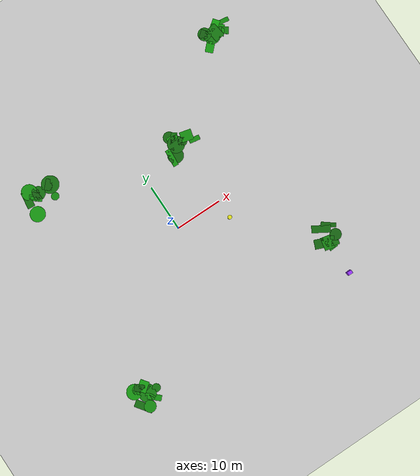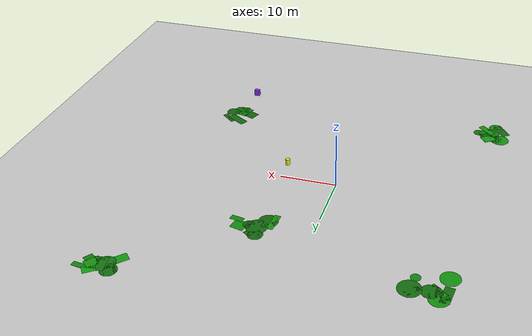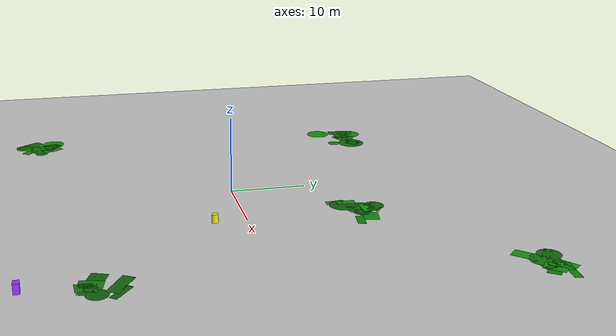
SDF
<sdf version="1.8">
 <world name="semantic_segmentation_world">
  <model name="ground_plane">
   <static>true</static>
   <link name="link">
    <collision name="collision">
     <geometry><plane><normal>0 0 1</normal><size>120 120</size></plane></geometry>
     <surface><friction><ode><mu>100</mu><mu2>50</mu2></ode></friction></surface>
    </collision>
    <visual name="visual">
     <geometry><plane><normal>0 0 1</normal><size>100 100</size></plane></geometry>
     <material>
      <ambient>0.8 0.8 0.8 1</ambient>
      <diffuse>0.8 0.8 0.8 1</diffuse>
      <specular>0.8 0.8 0.8 1</specular>
     </material>
    </visual>
   </link>
  </model>
  <model name="dynamic_obstacle_3">
   <static>true</static>
   <pose>24 -27 0.6 0 0 0</pose>
   <link name="body">
    <inertial><mass>1</mass><inertia><ixx>0.12</ixx><iyy>0.12</iyy><izz>0.12</izz></inertia></inertial>
    <velocity_decay><linear>0.4</linear><angular>0.8</angular></velocity_decay>
    <collision name="collision">
     <geometry><box><size>1.0 0.7 1.2</size></box></geometry>
     <surface><friction><ode><mu>0.2</mu><mu2>0.2</mu2></ode></friction></surface>
    </collision>
    <visual name="visual">
     <geometry><box><size>1.0 0.7 1.2</size></box></geometry>
     <material><ambient>0.6 0.2 1 1</ambient><diffuse>0.6 0.2 1 1</diffuse></material>
    </visual>
   </link>
   <plugin filename="ignition-gazebo-label-system" name="ignition::gazebo::systems::Label">
    <label>6</label>
   </plugin>
   <plugin filename="libssmi_periodic_motion_system.so" name="semantic_segmentation_husky::PeriodicMotionSystem">
    <offset>10 10 0</offset>
    <period>45</period>
    <phase>11.25</phase>
   </plugin>
  </model>
  <model name="dynamic_obstacle_8">
   <static>true</static>
   <pose>10 -4 0.55 0 0 -1.5708</pose>
   <link name="body">
    <inertial><mass>1</mass><inertia><ixx>0.1</ixx><iyy>0.1</iyy><izz>0.1</izz></inertia></inertial>
    <velocity_decay><linear>0.4</linear><angular>0.8</angular></velocity_decay>
    <collision name="collision">
     <geometry><cylinder><radius>0.42</radius><length>1.1</length></cylinder></geometry>
     <surface><friction><ode><mu>0.2</mu><mu2>0.2</mu2></ode></friction></surface>
    </collision>
    <visual name="visual">
     <geometry><cylinder><radius>0.42</radius><length>1.1</length></cylinder></geometry>
     <material><ambient>0.9 0.9 0.1 1</ambient><diffuse>0.9 0.9 0.1 1</diffuse></material>
    </visual>
   </link>
   <plugin filename="ignition-gazebo-label-system" name="ignition::gazebo::systems::Label">
    <label>5</label>
   </plugin>
   <plugin filename="libssmi_periodic_motion_system.so" name="semantic_segmentation_husky::PeriodicMotionSystem">
    <offset>0 -12 0</offset>
    <period>36</period>
    <phase>9</phase>
   </plugin>
  </model>
  <model name="irregular_grass_islands">
   <static>true</static>
   <link name="grass_visuals">
    <visual name="grass_00">
     <pose>-21.062 21.567 0.008 0 0 2.50512</pose>
     <geometry><box><size>2.769 1.318 0.016</size></box></geometry>
     <material>
      <ambient>0.06 0.445 0.05 1</ambient>
      <diffuse>0.08 0.545 0.06 1</diffuse>
      <specular>0.01 0.02 0.01 1</specular>
     </material>
    </visual>
    <visual name="grass_01">
     <pose>-20.048 22.076 0.008 0 0 -0.96454</pose>
     <geometry><cylinder><radius>1.474</radius><length>0.016</length></cylinder></geometry>
     <material>
      <ambient>0.06 0.347 0.05 1</ambient>
      <diffuse>0.08 0.447 0.06 1</diffuse>
      <specular>0.01 0.02 0.01 1</specular>
     </material>
    </visual>
    <visual name="grass_02">
     <pose>-22.535 18.539 0.008 0 0 -1.46520</pose>
     <geometry><cylinder><radius>1.649</radius><length>0.016</length></cylinder></geometry>
     <material>
      <ambient>0.06 0.498 0.05 1</ambient>
      <diffuse>0.08 0.598 0.06 1</diffuse>
      <specular>0.01 0.02 0.01 1</specular>
     </material>
    </visual>
    <visual name="grass_03">
     <pose>-17.041 22.263 0.008 0 0 -1.83275</pose>
     <geometry><cylinder><radius>1.904</radius><length>0.016</length></cylinder></geometry>
     <material>
      <ambient>0.06 0.337 0.05 1</ambient>
      <diffuse>0.08 0.437 0.06 1</diffuse>
      <specular>0.01 0.02 0.01 1</specular>
     </material>
    </visual>
    <visual name="grass_04">
     <pose>-20.556 21.852 0.008 0 0 -1.69581</pose>
     <geometry><box><size>2.070 1.498 0.016</size></box></geometry>
     <material>
      <ambient>0.06 0.286 0.05 1</ambient>
      <diffuse>0.08 0.386 0.06 1</diffuse>
      <specular>0.01 0.02 0.01 1</specular>
     </material>
    </visual>
    <visual name="grass_05">
     <pose>-17.496 19.650 0.008 0 0 -1.26731</pose>
     <geometry><cylinder><radius>0.839</radius><length>0.016</length></cylinder></geometry>
     <material>
      <ambient>0.06 0.438 0.05 1</ambient>
      <diffuse>0.08 0.538 0.06 1</diffuse>
      <specular>0.01 0.02 0.01 1</specular>
     </material>
    </visual>
    <visual name="grass_06">
     <pose>-22.595 22.188 0.008 0 0 -1.68992</pose>
     <geometry><box><size>3.592 1.588 0.016</size></box></geometry>
     <material>
      <ambient>0.06 0.341 0.05 1</ambient>
      <diffuse>0.08 0.441 0.06 1</diffuse>
      <specular>0.01 0.02 0.01 1</specular>
     </material>
    </visual>
    <visual name="grass_07">
     <pose>-17.320 22.391 0.008 0 0 -0.75762</pose>
     <geometry><box><size>1.546 2.395 0.016</size></box></geometry>
     <material>
      <ambient>0.06 0.298 0.05 1</ambient>
      <diffuse>0.08 0.398 0.06 1</diffuse>
      <specular>0.01 0.02 0.01 1</specular>
     </material>
    </visual>
    <visual name="grass_08">
     <pose>-21.561 23.311 0.008 0 0 2.21518</pose>
     <geometry><cylinder><radius>1.691</radius><length>0.016</length></cylinder></geometry>
     <material>
      <ambient>0.06 0.479 0.05 1</ambient>
      <diffuse>0.08 0.579 0.06 1</diffuse>
      <specular>0.01 0.02 0.01 1</specular>
     </material>
    </visual>
    <visual name="grass_09">
     <pose>6.959 12.889 0.008 0 0 -1.65070</pose>
     <geometry><box><size>3.745 1.120 0.016</size></box></geometry>
     <material>
      <ambient>0.06 0.479 0.05 1</ambient>
      <diffuse>0.08 0.579 0.06 1</diffuse>
      <specular>0.01 0.02 0.01 1</specular>
     </material>
    </visual>
    <visual name="grass_10">
     <pose>9.573 16.042 0.008 0 0 -2.21500</pose>
     <geometry><box><size>2.462 1.315 0.016</size></box></geometry>
     <material>
      <ambient>0.06 0.353 0.05 1</ambient>
      <diffuse>0.08 0.453 0.06 1</diffuse>
      <specular>0.01 0.02 0.01 1</specular>
     </material>
    </visual>
    <visual name="grass_11">
     <pose>13.031 13.539 0.008 0 0 -0.17223</pose>
     <geometry><box><size>2.315 1.025 0.016</size></box></geometry>
     <material>
      <ambient>0.06 0.447 0.05 1</ambient>
      <diffuse>0.08 0.547 0.06 1</diffuse>
      <specular>0.01 0.02 0.01 1</specular>
     </material>
    </visual>
    <visual name="grass_12">
     <pose>8.810 16.691 0.008 0 0 1.14218</pose>
     <geometry><cylinder><radius>1.292</radius><length>0.016</length></cylinder></geometry>
     <material>
      <ambient>0.06 0.310 0.05 1</ambient>
      <diffuse>0.08 0.410 0.06 1</diffuse>
      <specular>0.01 0.02 0.01 1</specular>
     </material>
    </visual>
    <visual name="grass_13">
     <pose>10.657 14.502 0.008 0 0 2.24129</pose>
     <geometry><cylinder><radius>0.988</radius><length>0.016</length></cylinder></geometry>
     <material>
      <ambient>0.06 0.284 0.05 1</ambient>
      <diffuse>0.08 0.384 0.06 1</diffuse>
      <specular>0.01 0.02 0.01 1</specular>
     </material>
    </visual>
    <visual name="grass_14">
     <pose>9.250 14.731 0.008 0 0 -0.44316</pose>
     <geometry><cylinder><radius>1.838</radius><length>0.016</length></cylinder></geometry>
     <material>
      <ambient>0.06 0.330 0.05 1</ambient>
      <diffuse>0.08 0.430 0.06 1</diffuse>
      <specular>0.01 0.02 0.01 1</specular>
     </material>
    </visual>
    <visual name="grass_15">
     <pose>12.058 15.052 0.008 0 0 1.33181</pose>
     <geometry><box><size>2.199 2.498 0.016</size></box></geometry>
     <material>
      <ambient>0.06 0.468 0.05 1</ambient>
      <diffuse>0.08 0.568 0.06 1</diffuse>
      <specular>0.01 0.02 0.01 1</specular>
     </material>
    </visual>
    <visual name="grass_16">
     <pose>9.238 15.842 0.008 0 0 1.57316</pose>
     <geometry><box><size>1.994 2.413 0.016</size></box></geometry>
     <material>
      <ambient>0.06 0.503 0.05 1</ambient>
      <diffuse>0.08 0.603 0.06 1</diffuse>
      <specular>0.01 0.02 0.01 1</specular>
     </material>
    </visual>
    <visual name="grass_17">
     <pose>7.888 12.856 0.008 0 0 -0.77799</pose>
     <geometry><cylinder><radius>1.696</radius><length>0.016</length></cylinder></geometry>
     <material>
      <ambient>0.06 0.311 0.05 1</ambient>
      <diffuse>0.08 0.411 0.06 1</diffuse>
      <specular>0.01 0.02 0.01 1</specular>
     </material>
    </visual>
    <visual name="grass_18">
     <pose>23.899 -19.577 0.008 0 0 1.35939</pose>
     <geometry><box><size>2.770 2.201 0.016</size></box></geometry>
     <material>
      <ambient>0.06 0.415 0.05 1</ambient>
      <diffuse>0.08 0.515 0.06 1</diffuse>
      <specular>0.01 0.02 0.01 1</specular>
     </material>
    </visual>
    <visual name="grass_19">
     <pose>22.307 -18.804 0.008 0 0 -1.95655</pose>
     <geometry><box><size>1.990 2.027 0.016</size></box></geometry>
     <material>
      <ambient>0.06 0.302 0.05 1</ambient>
      <diffuse>0.08 0.402 0.06 1</diffuse>
      <specular>0.01 0.02 0.01 1</specular>
     </material>
    </visual>
    <visual name="grass_20">
     <pose>24.357 -16.492 0.008 0 0 2.60232</pose>
     <geometry><box><size>3.991 1.539 0.016</size></box></geometry>
     <material>
      <ambient>0.06 0.317 0.05 1</ambient>
      <diffuse>0.08 0.417 0.06 1</diffuse>
      <specular>0.01 0.02 0.01 1</specular>
     </material>
    </visual>
    <visual name="grass_21">
     <pose>26.213 -19.038 0.008 0 0 1.91586</pose>
     <geometry><cylinder><radius>1.253</radius><length>0.016</length></cylinder></geometry>
     <material>
      <ambient>0.06 0.297 0.05 1</ambient>
      <diffuse>0.08 0.397 0.06 1</diffuse>
      <specular>0.01 0.02 0.01 1</specular>
     </material>
    </visual>
    <visual name="grass_22">
     <pose>26.148 -16.566 0.008 0 0 -0.67029</pose>
     <geometry><box><size>3.163 0.923 0.016</size></box></geometry>
     <material>
      <ambient>0.06 0.306 0.05 1</ambient>
      <diffuse>0.08 0.406 0.06 1</diffuse>
      <specular>0.01 0.02 0.01 1</specular>
     </material>
    </visual>
    <visual name="grass_23">
     <pose>25.039 -19.564 0.008 0 0 1.00718</pose>
     <geometry><box><size>1.571 0.881 0.016</size></box></geometry>
     <material>
      <ambient>0.06 0.340 0.05 1</ambient>
      <diffuse>0.08 0.440 0.06 1</diffuse>
      <specular>0.01 0.02 0.01 1</specular>
     </material>
    </visual>
    <visual name="grass_24">
     <pose>24.330 -20.227 0.008 0 0 -3.09723</pose>
     <geometry><box><size>1.868 2.130 0.016</size></box></geometry>
     <material>
      <ambient>0.06 0.416 0.05 1</ambient>
      <diffuse>0.08 0.516 0.06 1</diffuse>
      <specular>0.01 0.02 0.01 1</specular>
     </material>
    </visual>
    <visual name="grass_25">
     <pose>24.751 -20.231 0.008 0 0 -0.34963</pose>
     <geometry><box><size>2.650 1.015 0.016</size></box></geometry>
     <material>
      <ambient>0.06 0.353 0.05 1</ambient>
      <diffuse>0.08 0.453 0.06 1</diffuse>
      <specular>0.01 0.02 0.01 1</specular>
     </material>
    </visual>
    <visual name="grass_26">
     <pose>24.307 -19.712 0.008 0 0 -1.87363</pose>
     <geometry><cylinder><radius>0.930</radius><length>0.016</length></cylinder></geometry>
     <material>
      <ambient>0.06 0.439 0.05 1</ambient>
      <diffuse>0.08 0.539 0.06 1</diffuse>
      <specular>0.01 0.02 0.01 1</specular>
     </material>
    </visual>
    <visual name="grass_27">
     <pose>-24.176 -23.088 0.008 0 0 -0.70839</pose>
     <geometry><box><size>3.488 1.462 0.016</size></box></geometry>
     <material>
      <ambient>0.06 0.287 0.05 1</ambient>
      <diffuse>0.08 0.387 0.06 1</diffuse>
      <specular>0.01 0.02 0.01 1</specular>
     </material>
    </visual>
    <visual name="grass_28">
     <pose>-24.878 -26.929 0.008 0 0 -1.34440</pose>
     <geometry><cylinder><radius>1.270</radius><length>0.016</length></cylinder></geometry>
     <material>
      <ambient>0.06 0.450 0.05 1</ambient>
      <diffuse>0.08 0.550 0.06 1</diffuse>
      <specular>0.01 0.02 0.01 1</specular>
     </material>
    </visual>
    <visual name="grass_29">
     <pose>-23.298 -25.721 0.008 0 0 -0.73721</pose>
     <geometry><box><size>3.399 1.226 0.016</size></box></geometry>
     <material>
      <ambient>0.06 0.476 0.05 1</ambient>
      <diffuse>0.08 0.576 0.06 1</diffuse>
      <specular>0.01 0.02 0.01 1</specular>
     </material>
    </visual>
    <visual name="grass_30">
     <pose>-25.276 -22.737 0.008 0 0 -0.59421</pose>
     <geometry><cylinder><radius>0.992</radius><length>0.016</length></cylinder></geometry>
     <material>
      <ambient>0.06 0.445 0.05 1</ambient>
      <diffuse>0.08 0.545 0.06 1</diffuse>
      <specular>0.01 0.02 0.01 1</specular>
     </material>
    </visual>
    <visual name="grass_31">
     <pose>-23.851 -24.369 0.008 0 0 2.81046</pose>
     <geometry><cylinder><radius>1.874</radius><length>0.016</length></cylinder></geometry>
     <material>
      <ambient>0.06 0.405 0.05 1</ambient>
      <diffuse>0.08 0.505 0.06 1</diffuse>
      <specular>0.01 0.02 0.01 1</specular>
     </material>
    </visual>
    <visual name="grass_32">
     <pose>-21.796 -24.499 0.008 0 0 -2.38540</pose>
     <geometry><cylinder><radius>0.890</radius><length>0.016</length></cylinder></geometry>
     <material>
      <ambient>0.06 0.368 0.05 1</ambient>
      <diffuse>0.08 0.468 0.06 1</diffuse>
      <specular>0.01 0.02 0.01 1</specular>
     </material>
    </visual>
    <visual name="grass_33">
     <pose>-23.858 -22.764 0.008 0 0 2.21026</pose>
     <geometry><box><size>1.904 2.391 0.016</size></box></geometry>
     <material>
      <ambient>0.06 0.524 0.05 1</ambient>
      <diffuse>0.08 0.624 0.06 1</diffuse>
      <specular>0.01 0.02 0.01 1</specular>
     </material>
    </visual>
    <visual name="grass_34">
     <pose>-25.906 -26.242 0.008 0 0 -0.94411</pose>
     <geometry><box><size>3.865 1.546 0.016</size></box></geometry>
     <material>
      <ambient>0.06 0.331 0.05 1</ambient>
      <diffuse>0.08 0.431 0.06 1</diffuse>
      <specular>0.01 0.02 0.01 1</specular>
     </material>
    </visual>
    <visual name="grass_35">
     <pose>-25.988 -22.755 0.008 0 0 2.14021</pose>
     <geometry><cylinder><radius>1.631</radius><length>0.016</length></cylinder></geometry>
     <material>
      <ambient>0.06 0.497 0.05 1</ambient>
      <diffuse>0.08 0.597 0.06 1</diffuse>
      <specular>0.01 0.02 0.01 1</specular>
     </material>
    </visual>
    <visual name="grass_36">
     <pose>30.274 29.719 0.008 0 0 0.86283</pose>
     <geometry><box><size>2.531 1.833 0.016</size></box></geometry>
     <material>
      <ambient>0.06 0.494 0.05 1</ambient>
      <diffuse>0.08 0.594 0.06 1</diffuse>
      <specular>0.01 0.02 0.01 1</specular>
     </material>
    </visual>
    <visual name="grass_37">
     <pose>28.232 29.472 0.008 0 0 -0.63979</pose>
     <geometry><cylinder><radius>1.671</radius><length>0.016</length></cylinder></geometry>
     <material>
      <ambient>0.06 0.388 0.05 1</ambient>
      <diffuse>0.08 0.488 0.06 1</diffuse>
      <specular>0.01 0.02 0.01 1</specular>
     </material>
    </visual>
    <visual name="grass_38">
     <pose>26.556 27.856 0.008 0 0 2.34928</pose>
     <geometry><box><size>1.721 2.393 0.016</size></box></geometry>
     <material>
      <ambient>0.06 0.512 0.05 1</ambient>
      <diffuse>0.08 0.612 0.06 1</diffuse>
      <specular>0.01 0.02 0.01 1</specular>
     </material>
    </visual>
    <visual name="grass_39">
     <pose>31.224 31.026 0.008 0 0 -0.13342</pose>
     <geometry><box><size>3.854 0.950 0.016</size></box></geometry>
     <material>
      <ambient>0.06 0.442 0.05 1</ambient>
      <diffuse>0.08 0.542 0.06 1</diffuse>
      <specular>0.01 0.02 0.01 1</specular>
     </material>
    </visual>
    <visual name="grass_40">
     <pose>29.194 29.804 0.008 0 0 -1.40929</pose>
     <geometry><box><size>3.137 2.303 0.016</size></box></geometry>
     <material>
      <ambient>0.06 0.375 0.05 1</ambient>
      <diffuse>0.08 0.475 0.06 1</diffuse>
      <specular>0.01 0.02 0.01 1</specular>
     </material>
    </visual>
    <visual name="grass_41">
     <pose>26.957 30.773 0.008 0 0 2.25343</pose>
     <geometry><box><size>1.647 1.874 0.016</size></box></geometry>
     <material>
      <ambient>0.06 0.282 0.05 1</ambient>
      <diffuse>0.08 0.382 0.06 1</diffuse>
      <specular>0.01 0.02 0.01 1</specular>
     </material>
    </visual>
    <visual name="grass_42">
     <pose>30.120 31.298 0.008 0 0 2.20522</pose>
     <geometry><box><size>1.611 2.055 0.016</size></box></geometry>
     <material>
      <ambient>0.06 0.547 0.05 1</ambient>
      <diffuse>0.08 0.647 0.06 1</diffuse>
      <specular>0.01 0.02 0.01 1</specular>
     </material>
    </visual>
    <visual name="grass_43">
     <pose>27.077 30.730 0.008 0 0 2.52383</pose>
     <geometry><cylinder><radius>1.416</radius><length>0.016</length></cylinder></geometry>
     <material>
      <ambient>0.06 0.346 0.05 1</ambient>
      <diffuse>0.08 0.446 0.06 1</diffuse>
      <specular>0.01 0.02 0.01 1</specular>
     </material>
    </visual>
    <visual name="grass_44">
     <pose>30.976 29.215 0.008 0 0 -2.19709</pose>
     <geometry><box><size>1.557 1.984 0.016</size></box></geometry>
     <material>
      <ambient>0.06 0.401 0.05 1</ambient>
      <diffuse>0.08 0.501 0.06 1</diffuse>
      <specular>0.01 0.02 0.01 1</specular>
     </material>
    </visual>
   </link>
   <plugin filename="ignition-gazebo-label-system" name="ignition::gazebo::systems::Label">
    <label>8</label>
   </plugin>
  </model>
 </world>
</sdf>
